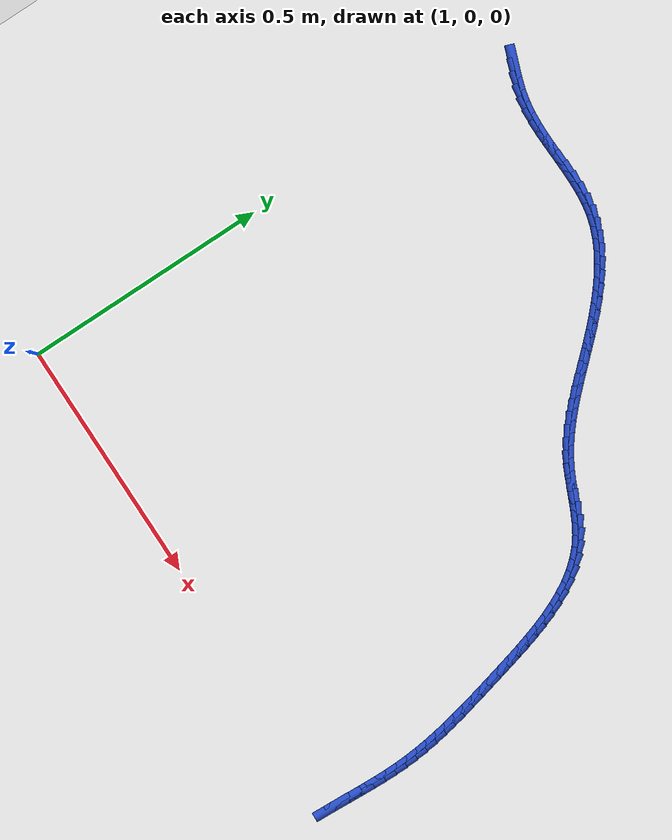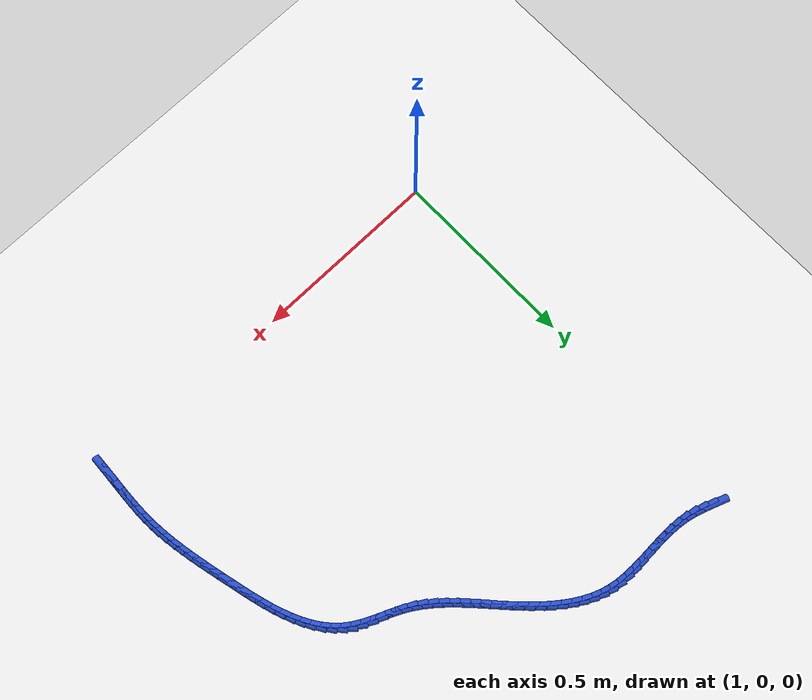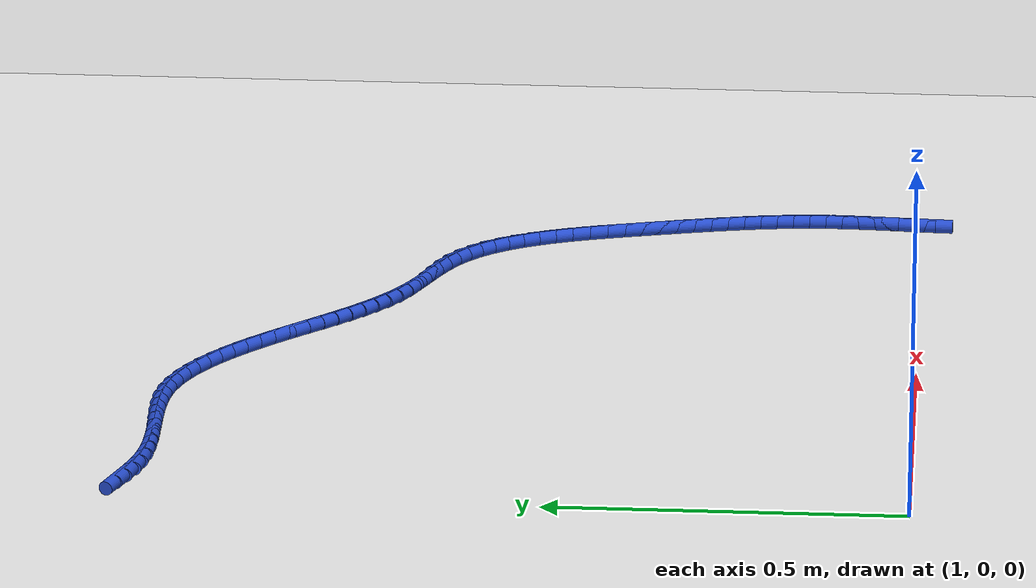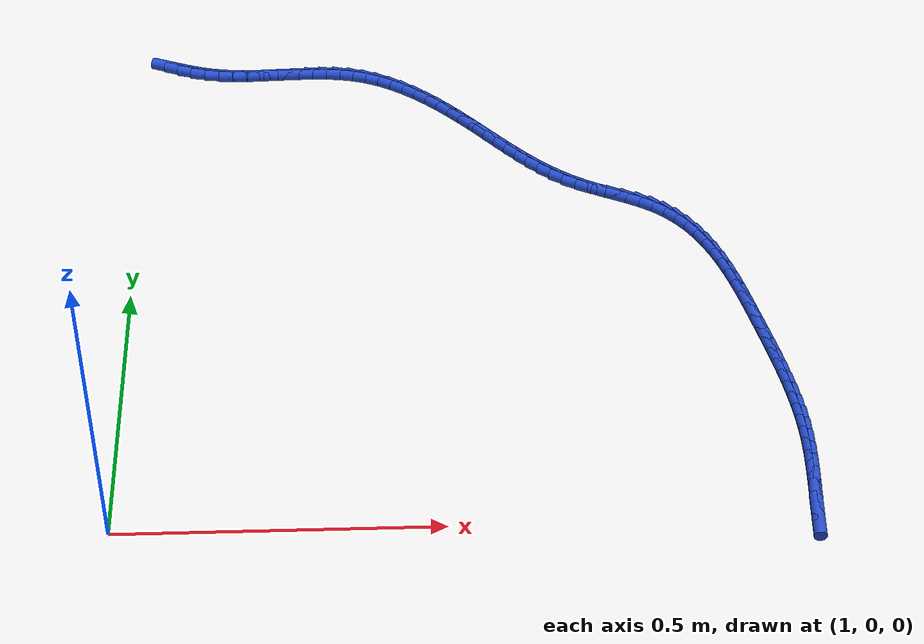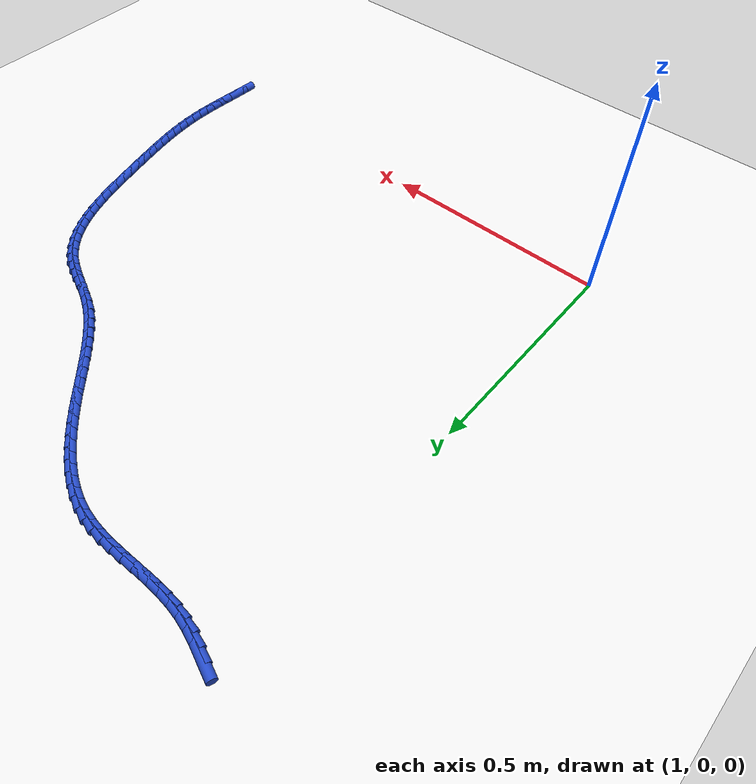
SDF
<sdf version="1.6">
 <world name="default">
  <model name="ground_plane">
   <static>1</static>
   <link name="link">
    <collision name="collision">
     <geometry><plane><normal>0 0 1</normal><size>100 100</size></plane></geometry>
     <surface><friction><ode><mu>100</mu><mu2>50</mu2></ode></friction></surface>
    </collision>
    <visual name="visual">
     <cast_shadows>0</cast_shadows>
     <geometry><plane><normal>0 0 1</normal><size>100 100</size></plane></geometry>
     <material>
      <script><uri>file://media/materials/scripts/gazebo.material</uri><name>Gazebo/WhiteGlow</name></script>
     </material>
    </visual>
   </link>
  </model>
  <model name="line">
   <link name="link_66">
    <pose>1.0381458278195175 1.0767680290504607 0.01 0 1.57 -0.35371978099237134</pose>
    <collision name="collision">
     <geometry><cylinder><radius>0.01</radius><length>0.08</length></cylinder></geometry>
    </collision>
    <visual name="visual">
     <material>
      <script><name>Gazebo/Blue</name><uri>file://media/materials/scripts/gazebo.material</uri></script>
     </material>
     <geometry><cylinder><radius>0.01</radius><length>0.08</length></cylinder></geometry>
    </visual>
   </link>
   <link name="link_67">
    <pose>1.061910256352784 1.0679930216064752 0.01 0 1.57 -0.30743141323960294</pose>
    <collision name="collision">
     <geometry><cylinder><radius>0.01</radius><length>0.08</length></cylinder></geometry>
    </collision>
    <visual name="visual">
     <material>
      <script><name>Gazebo/Blue</name><uri>file://media/materials/scripts/gazebo.material</uri></script>
     </material>
     <geometry><cylinder><radius>0.01</radius><length>0.08</length></cylinder></geometry>
    </visual>
   </link>
   <link name="link_68">
    <pose>1.0859365636925102 1.0603647248031756 0.01 0 1.57 -0.2305377430001714</pose>
    <collision name="collision">
     <geometry><cylinder><radius>0.01</radius><length>0.08</length></cylinder></geometry>
    </collision>
    <visual name="visual">
     <material>
      <script><name>Gazebo/Blue</name><uri>file://media/materials/scripts/gazebo.material</uri></script>
     </material>
     <geometry><cylinder><radius>0.01</radius><length>0.08</length></cylinder></geometry>
    </visual>
   </link>
   <link name="link_69">
    <pose>1.1103440872834063 1.0546360188912633 0.01 0 1.57 -0.14038997134857908</pose>
    <collision name="collision">
     <geometry><cylinder><radius>0.01</radius><length>0.08</length></cylinder></geometry>
    </collision>
    <visual name="visual">
     <material>
      <script><name>Gazebo/Blue</name><uri>file://media/materials/scripts/gazebo.material</uri></script>
     </material>
     <geometry><cylinder><radius>0.01</radius><length>0.08</length></cylinder></geometry>
    </visual>
   </link>
   <link name="link_70">
    <pose>1.1351726215416915 1.05112725955043 0.01 0 1.57 -0.06730607816485398</pose>
    <collision name="collision">
     <geometry><cylinder><radius>0.01</radius><length>0.08</length></cylinder></geometry>
    </collision>
    <visual name="visual">
     <material>
      <script><name>Gazebo/Blue</name><uri>file://media/materials/scripts/gazebo.material</uri></script>
     </material>
     <geometry><cylinder><radius>0.01</radius><length>0.08</length></cylinder></geometry>
    </visual>
   </link>
   <link name="link_71">
    <pose>1.1603282205221834 1.0494315735184856 0.01 0 1.57 -0.014153819753878225</pose>
    <collision name="collision">
     <geometry><cylinder><radius>0.01</radius><length>0.08</length></cylinder></geometry>
    </collision>
    <visual name="visual">
     <material>
      <script><name>Gazebo/Blue</name><uri>file://media/materials/scripts/gazebo.material</uri></script>
     </material>
     <geometry><cylinder><radius>0.01</radius><length>0.08</length></cylinder></geometry>
    </visual>
   </link>
   <link name="link_72">
    <pose>1.1857041194488427 1.049072383633088 0.01 0 1.57 0.01964204853696827</pose>
    <collision name="collision">
     <geometry><cylinder><radius>0.01</radius><length>0.08</length></cylinder></geometry>
    </collision>
    <visual name="visual">
     <material>
      <script><name>Gazebo/Blue</name><uri>file://media/materials/scripts/gazebo.material</uri></script>
     </material>
     <geometry><cylinder><radius>0.01</radius><length>0.08</length></cylinder></geometry>
    </visual>
   </link>
   <link name="link_73">
    <pose>1.2111935535456335 1.0495731127318964 0.01 0 1.57 0.03466072221899772</pose>
    <collision name="collision">
     <geometry><cylinder><radius>0.01</radius><length>0.08</length></cylinder></geometry>
    </collision>
    <visual name="visual">
     <material>
      <script><name>Gazebo/Blue</name><uri>file://media/materials/scripts/gazebo.material</uri></script>
     </material>
     <geometry><cylinder><radius>0.01</radius><length>0.08</length></cylinder></geometry>
    </visual>
   </link>
   <link name="link_74">
    <pose>1.2366897580365175 1.050457183652568 0.01 0 1.57 0.03112984585743997</pose>
    <collision name="collision">
     <geometry><cylinder><radius>0.01</radius><length>0.08</length></cylinder></geometry>
    </collision>
    <visual name="visual">
     <material>
      <script><name>Gazebo/Blue</name><uri>file://media/materials/scripts/gazebo.material</uri></script>
     </material>
     <geometry><cylinder><radius>0.01</radius><length>0.08</length></cylinder></geometry>
    </visual>
   </link>
   <link name="link_75">
    <pose>1.2620859681454575 1.051248019232762 0.01 0 1.57 0.008774204957133866</pose>
    <collision name="collision">
     <geometry><cylinder><radius>0.01</radius><length>0.08</length></cylinder></geometry>
    </collision>
    <visual name="visual">
     <material>
      <script><name>Gazebo/Blue</name><uri>file://media/materials/scripts/gazebo.material</uri></script>
     </material>
     <geometry><cylinder><radius>0.01</radius><length>0.08</length></cylinder></geometry>
    </visual>
   </link>
   <link name="link_76">
    <pose>1.2872754190964162 1.0514690423101363 0.01 0 1.57 -0.03316716253108689</pose>
    <collision name="collision">
     <geometry><cylinder><radius>0.01</radius><length>0.08</length></cylinder></geometry>
    </collision>
    <visual name="visual">
     <material>
      <script><name>Gazebo/Blue</name><uri>file://media/materials/scripts/gazebo.material</uri></script>
     </material>
     <geometry><cylinder><radius>0.01</radius><length>0.08</length></cylinder></geometry>
    </visual>
   </link>
   <link name="link_77">
    <pose>1.3121513461133556 1.0506436757223487 0.01 0 1.57 -0.0957306996572514</pose>
    <collision name="collision">
     <geometry><cylinder><radius>0.01</radius><length>0.08</length></cylinder></geometry>
    </collision>
    <visual name="visual">
     <material>
      <script><name>Gazebo/Blue</name><uri>file://media/materials/scripts/gazebo.material</uri></script>
     </material>
     <geometry><cylinder><radius>0.01</radius><length>0.08</length></cylinder></geometry>
    </visual>
   </link>
   <link name="link_78">
    <pose>1.3366069844202393 1.0482953423070587 0.01 0 1.57 -0.17974126352355807</pose>
    <collision name="collision">
     <geometry><cylinder><radius>0.01</radius><length>0.08</length></cylinder></geometry>
    </collision>
    <visual name="visual">
     <material>
      <script><name>Gazebo/Blue</name><uri>file://media/materials/scripts/gazebo.material</uri></script>
     </material>
     <geometry><cylinder><radius>0.01</radius><length>0.08</length></cylinder></geometry>
    </visual>
   </link>
   <link name="link_79">
    <pose>1.3605355692410286 1.0439474649019236 0.01 0 1.57 -0.28208507506470226</pose>
    <collision name="collision">
     <geometry><cylinder><radius>0.01</radius><length>0.08</length></cylinder></geometry>
    </collision>
    <visual name="visual">
     <material>
      <script><name>Gazebo/Blue</name><uri>file://media/materials/scripts/gazebo.material</uri></script>
     </material>
     <geometry><cylinder><radius>0.01</radius><length>0.08</length></cylinder></geometry>
    </visual>
   </link>
   <link name="link_80">
    <pose>1.3838416240269447 1.0371930633298188 0.01 0 1.57 -0.3817627258656698</pose>
    <collision name="collision">
     <geometry><cylinder><radius>0.01</radius><length>0.08</length></cylinder></geometry>
    </collision>
    <visual name="visual">
     <material>
      <script><name>Gazebo/Blue</name><uri>file://media/materials/scripts/gazebo.material</uri></script>
     </material>
     <geometry><cylinder><radius>0.01</radius><length>0.08</length></cylinder></geometry>
    </visual>
   </link>
   <link name="link_81">
    <pose>1.4065057736673519 1.028094356920742 0.01 0 1.57 -0.46979350355575417</pose>
    <collision name="collision">
     <geometry><cylinder><radius>0.01</radius><length>0.08</length></cylinder></geometry>
    </collision>
    <visual name="visual">
     <material>
      <script><name>Gazebo/Blue</name><uri>file://media/materials/scripts/gazebo.material</uri></script>
     </material>
     <geometry><cylinder><radius>0.01</radius><length>0.08</length></cylinder></geometry>
    </visual>
   </link>
   <link name="link_82">
    <pose>1.4285400824399808 1.01690740293844 0.01 0 1.57 -0.5461863242654821</pose>
    <collision name="collision">
     <geometry><cylinder><radius>0.01</radius><length>0.08</length></cylinder></geometry>
    </collision>
    <visual name="visual">
     <material>
      <script><name>Gazebo/Blue</name><uri>file://media/materials/scripts/gazebo.material</uri></script>
     </material>
     <geometry><cylinder><radius>0.01</radius><length>0.08</length></cylinder></geometry>
    </visual>
   </link>
   <link name="link_83">
    <pose>1.4499567139241207 1.0038888708853233 0.01 0 1.57 -0.6115529397663028</pose>
    <collision name="collision">
     <geometry><cylinder><radius>0.01</radius><length>0.08</length></cylinder></geometry>
    </collision>
    <visual name="visual">
     <material>
      <script><name>Gazebo/Blue</name><uri>file://media/materials/scripts/gazebo.material</uri></script>
     </material>
     <geometry><cylinder><radius>0.01</radius><length>0.08</length></cylinder></geometry>
    </visual>
   </link>
   <link name="link_84">
    <pose>1.4707678316990627 0.9892954302638024 0.01 0 1.57 -0.6667727513537921</pose>
    <collision name="collision">
     <geometry><cylinder><radius>0.01</radius><length>0.08</length></cylinder></geometry>
    </collision>
    <visual name="visual">
     <material>
      <script><name>Gazebo/Blue</name><uri>file://media/materials/scripts/gazebo.material</uri></script>
     </material>
     <geometry><cylinder><radius>0.01</radius><length>0.08</length></cylinder></geometry>
    </visual>
   </link>
   <link name="link_85">
    <pose>1.4909855993440952 0.9733837505762872 0.01 0 1.57 -0.7127770072014896</pose>
    <collision name="collision">
     <geometry><cylinder><radius>0.01</radius><length>0.08</length></cylinder></geometry>
    </collision>
    <visual name="visual">
     <material>
      <script><name>Gazebo/Blue</name><uri>file://media/materials/scripts/gazebo.material</uri></script>
     </material>
     <geometry><cylinder><radius>0.01</radius><length>0.08</length></cylinder></geometry>
    </visual>
   </link>
   <link name="link_86">
    <pose>1.5106221804385094 0.9564105013251887 0.01 0 1.57 -0.7504176206354635</pose>
    <collision name="collision">
     <geometry><cylinder><radius>0.01</radius><length>0.08</length></cylinder></geometry>
    </collision>
    <visual name="visual">
     <material>
      <script><name>Gazebo/Blue</name><uri>file://media/materials/scripts/gazebo.material</uri></script>
     </material>
     <geometry><cylinder><radius>0.01</radius><length>0.08</length></cylinder></geometry>
    </visual>
   </link>
   <link name="link_87">
    <pose>1.5296897385615935 0.9386323520129163 0.01 0 1.57 -0.7803945819840636</pose>
    <collision name="collision">
     <geometry><cylinder><radius>0.01</radius><length>0.08</length></cylinder></geometry>
    </collision>
    <visual name="visual">
     <material>
      <script><name>Gazebo/Blue</name><uri>file://media/materials/scripts/gazebo.material</uri></script>
     </material>
     <geometry><cylinder><radius>0.01</radius><length>0.08</length></cylinder></geometry>
    </visual>
   </link>
   <link name="link_88">
    <pose>1.5482004372926395 0.9203059721418814 0.01 0 1.57 -0.8029318330285284</pose>
    <collision name="collision">
     <geometry><cylinder><radius>0.01</radius><length>0.08</length></cylinder></geometry>
    </collision>
    <visual name="visual">
     <material>
      <script><name>Gazebo/Blue</name><uri>file://media/materials/scripts/gazebo.material</uri></script>
     </material>
     <geometry><cylinder><radius>0.01</radius><length>0.08</length></cylinder></geometry>
    </visual>
   </link>
   <link name="link_89">
    <pose>1.566189790311679 0.9016744550771016 0.01 0 1.57 -0.8169346020060594</pose>
    <collision name="collision">
     <geometry><cylinder><radius>0.01</radius><length>0.08</length></cylinder></geometry>
    </collision>
    <visual name="visual">
     <material>
      <script><name>Gazebo/Blue</name><uri>file://media/materials/scripts/gazebo.material</uri></script>
     </material>
     <geometry><cylinder><radius>0.01</radius><length>0.08</length></cylinder></geometry>
    </visual>
   </link>
   <link name="link_90">
    <pose>1.583796058649894 0.8829211551627157 0.01 0 1.57 -0.8219064782068806</pose>
    <collision name="collision">
     <geometry><cylinder><radius>0.01</radius><length>0.08</length></cylinder></geometry>
    </collision>
    <visual name="visual">
     <material>
      <script><name>Gazebo/Blue</name><uri>file://media/materials/scripts/gazebo.material</uri></script>
     </material>
     <geometry><cylinder><radius>0.01</radius><length>0.08</length></cylinder></geometry>
    </visual>
   </link>
   <link name="link_91">
    <pose>1.6011857561189073 0.8642130001058563 0.01 0 1.57 -0.8176576076891716</pose>
    <collision name="collision">
     <geometry><cylinder><radius>0.01</radius><length>0.08</length></cylinder></geometry>
    </collision>
    <visual name="visual">
     <material>
      <script><name>Gazebo/Blue</name><uri>file://media/materials/scripts/gazebo.material</uri></script>
     </material>
     <geometry><cylinder><radius>0.01</radius><length>0.08</length></cylinder></geometry>
    </visual>
   </link>
   <link name="link_92">
    <pose>1.6185253973555596 0.8457169171338607 0.01 0 1.57 -0.8039769889160758</pose>
    <collision name="collision">
     <geometry><cylinder><radius>0.01</radius><length>0.08</length></cylinder></geometry>
    </collision>
    <visual name="visual">
     <material>
      <script><name>Gazebo/Blue</name><uri>file://media/materials/scripts/gazebo.material</uri></script>
     </material>
     <geometry><cylinder><radius>0.01</radius><length>0.08</length></cylinder></geometry>
    </visual>
   </link>
   <link name="link_93">
    <pose>1.6359814969966895 0.8275998334740651 0.01 0 1.57 -0.7806427625578175</pose>
    <collision name="collision">
     <geometry><cylinder><radius>0.01</radius><length>0.08</length></cylinder></geometry>
    </collision>
    <visual name="visual">
     <material>
      <script><name>Gazebo/Blue</name><uri>file://media/materials/scripts/gazebo.material</uri></script>
     </material>
     <geometry><cylinder><radius>0.01</radius><length>0.08</length></cylinder></geometry>
    </visual>
   </link>
   <link name="link_94">
    <pose>1.6537205696791384 0.8100286763538078 0.01 0 1.57 -0.7474598549343492</pose>
    <collision name="collision">
     <geometry><cylinder><radius>0.01</radius><length>0.08</length></cylinder></geometry>
    </collision>
    <visual name="visual">
     <material>
      <script><name>Gazebo/Blue</name><uri>file://media/materials/scripts/gazebo.material</uri></script>
     </material>
     <geometry><cylinder><radius>0.01</radius><length>0.08</length></cylinder></geometry>
    </visual>
   </link>
   <link name="link_95">
    <pose>1.6719091300397462 0.7931703730004258 0.01 0 1.57 -0.7043286883288693</pose>
    <collision name="collision">
     <geometry><cylinder><radius>0.01</radius><length>0.08</length></cylinder></geometry>
    </collision>
    <visual name="visual">
     <material>
      <script><name>Gazebo/Blue</name><uri>file://media/materials/scripts/gazebo.material</uri></script>
     </material>
     <geometry><cylinder><radius>0.01</radius><length>0.08</length></cylinder></geometry>
    </visual>
   </link>
   <link name="link_96">
    <pose>1.690713692715353 0.7771918506412562 0.01 0 1.57 -0.6513455813508202</pose>
    <collision name="collision">
     <geometry><cylinder><radius>0.01</radius><length>0.08</length></cylinder></geometry>
    </collision>
    <visual name="visual">
     <material>
      <script><name>Gazebo/Blue</name><uri>file://media/materials/scripts/gazebo.material</uri></script>
     </material>
     <geometry><cylinder><radius>0.01</radius><length>0.08</length></cylinder></geometry>
    </visual>
   </link>
   <link name="link_97">
    <pose>1.7103007723427983 0.762260036503636 0.01 0 1.57 -0.5889270113876676</pose>
    <collision name="collision">
     <geometry><cylinder><radius>0.01</radius><length>0.08</length></cylinder></geometry>
    </collision>
    <visual name="visual">
     <material>
      <script><name>Gazebo/Blue</name><uri>file://media/materials/scripts/gazebo.material</uri></script>
     </material>
     <geometry><cylinder><radius>0.01</radius><length>0.08</length></cylinder></geometry>
    </visual>
   </link>
   <link name="link_98">
    <pose>1.7308368835589232 0.7485418578149028 0.01 0 1.57 -0.5180484513194363</pose>
    <collision name="collision">
     <geometry><cylinder><radius>0.01</radius><length>0.08</length></cylinder></geometry>
    </collision>
    <visual name="visual">
     <material>
      <script><name>Gazebo/Blue</name><uri>file://media/materials/scripts/gazebo.material</uri></script>
     </material>
     <geometry><cylinder><radius>0.01</radius><length>0.08</length></cylinder></geometry>
    </visual>
   </link>
   <link name="link_99">
    <pose>1.7524865991705647 0.7362020957964245 0.01 0 1.57 -0.45360791362111375</pose>
    <collision name="collision">
     <geometry><cylinder><radius>0.01</radius><length>0.08</length></cylinder></geometry>
    </collision>
    <visual name="visual">
     <material>
      <script><name>Gazebo/Blue</name><uri>file://media/materials/scripts/gazebo.material</uri></script>
     </material>
     <geometry><cylinder><radius>0.01</radius><length>0.08</length></cylinder></geometry>
    </visual>
   </link>
   <link name="link_100">
    <pose>1.7751752231838085 0.7251411046734352 0.01 0 1.57 -0.421575988081879</pose>
    <collision name="collision">
     <geometry><cylinder><radius>0.01</radius><length>0.08</length></cylinder></geometry>
    </collision>
    <visual name="visual">
     <material>
      <script><name>Gazebo/Blue</name><uri>file://media/materials/scripts/gazebo.material</uri></script>
     </material>
     <geometry><cylinder><radius>0.01</radius><length>0.08</length></cylinder></geometry>
    </visual>
   </link>
   <link name="link_101">
    <pose>1.7983610290698382 0.7147431016693554 0.01 0 1.57 -0.42361679714418626</pose>
    <collision name="collision">
     <geometry><cylinder><radius>0.01</radius><length>0.08</length></cylinder></geometry>
    </collision>
    <visual name="visual">
     <material>
      <script><name>Gazebo/Blue</name><uri>file://media/materials/scripts/gazebo.material</uri></script>
     </material>
     <geometry><cylinder><radius>0.01</radius><length>0.08</length></cylinder></geometry>
    </visual>
   </link>
   <link name="link_102">
    <pose>1.8214483041612892 0.7043326414339492 0.01 0 1.57 -0.4601349096327095</pose>
    <collision name="collision">
     <geometry><cylinder><radius>0.01</radius><length>0.08</length></cylinder></geometry>
    </collision>
    <visual name="visual">
     <material>
      <script><name>Gazebo/Blue</name><uri>file://media/materials/scripts/gazebo.material</uri></script>
     </material>
     <geometry><cylinder><radius>0.01</radius><length>0.08</length></cylinder></geometry>
    </visual>
   </link>
   <link name="link_103">
    <pose>1.8438413357908003 0.693234278616981 0.01 0 1.57 -0.5334170311915204</pose>
    <collision name="collision">
     <geometry><cylinder><radius>0.01</radius><length>0.08</length></cylinder></geometry>
    </collision>
    <visual name="visual">
     <material>
      <script><name>Gazebo/Blue</name><uri>file://media/materials/scripts/gazebo.material</uri></script>
     </material>
     <geometry><cylinder><radius>0.01</radius><length>0.08</length></cylinder></geometry>
    </visual>
   </link>
   <link name="link_104">
    <pose>1.8649444112910083 0.6807725678682153 0.01 0 1.57 -0.6436604302014025</pose>
    <collision name="collision">
     <geometry><cylinder><radius>0.01</radius><length>0.08</length></cylinder></geometry>
    </collision>
    <visual name="visual">
     <material>
      <script><name>Gazebo/Blue</name><uri>file://media/materials/scripts/gazebo.material</uri></script>
     </material>
     <geometry><cylinder><radius>0.01</radius><length>0.08</length></cylinder></geometry>
    </visual>
   </link>
   <link name="link_105">
    <pose>1.8842047774997706 0.6663224979688249 0.01 0 1.57 -0.7626624458103762</pose>
    <collision name="collision">
     <geometry><cylinder><radius>0.01</radius><length>0.08</length></cylinder></geometry>
    </collision>
    <visual name="visual">
     <material>
      <script><name>Gazebo/Blue</name><uri>file://media/materials/scripts/gazebo.material</uri></script>
     </material>
     <geometry><cylinder><radius>0.01</radius><length>0.08</length></cylinder></geometry>
    </visual>
   </link>
   <link name="link_106">
    <pose>1.9015150795397564 0.6497819518886039 0.01 0 1.57 -0.8708441908864054</pose>
    <collision name="collision">
     <geometry><cylinder><radius>0.01</radius><length>0.08</length></cylinder></geometry>
    </collision>
    <visual name="visual">
     <material>
      <script><name>Gazebo/Blue</name><uri>file://media/materials/scripts/gazebo.material</uri></script>
     </material>
     <geometry><cylinder><radius>0.01</radius><length>0.08</length></cylinder></geometry>
    </visual>
   </link>
   <link name="link_107">
    <pose>1.9170315911517721 0.6313583105839284 0.01 0 1.57 -0.9662516410617674</pose>
    <collision name="collision">
     <geometry><cylinder><radius>0.01</radius><length>0.08</length></cylinder></geometry>
    </collision>
    <visual name="visual">
     <material>
      <script><name>Gazebo/Blue</name><uri>file://media/materials/scripts/gazebo.material</uri></script>
     </material>
     <geometry><cylinder><radius>0.01</radius><length>0.08</length></cylinder></geometry>
    </visual>
   </link>
   <link name="link_108">
    <pose>1.9309140272102898 0.6112629948758501 0.01 0 1.57 -1.0484872147912623</pose>
    <collision name="collision">
     <geometry><cylinder><radius>0.01</radius><length>0.08</length></cylinder></geometry>
    </collision>
    <visual name="visual">
     <material>
      <script><name>Gazebo/Blue</name><uri>file://media/materials/scripts/gazebo.material</uri></script>
     </material>
     <geometry><cylinder><radius>0.01</radius><length>0.08</length></cylinder></geometry>
    </visual>
   </link>
   <link name="link_109">
    <pose>1.9433221025897842 0.5897074255854216 0.01 0 1.57 -1.1180392673759436</pose>
    <collision name="collision">
     <geometry><cylinder><radius>0.01</radius><length>0.08</length></cylinder></geometry>
    </collision>
    <visual name="visual">
     <material>
      <script><name>Gazebo/Blue</name><uri>file://media/materials/scripts/gazebo.material</uri></script>
     </material>
     <geometry><cylinder><radius>0.01</radius><length>0.08</length></cylinder></geometry>
    </visual>
   </link>
   <link name="link_110">
    <pose>1.9544155321647292 0.5669030235336949 0.01 0 1.57 -1.175847629124807</pose>
    <collision name="collision">
     <geometry><cylinder><radius>0.01</radius><length>0.08</length></cylinder></geometry>
    </collision>
    <visual name="visual">
     <material>
      <script><name>Gazebo/Blue</name><uri>file://media/materials/scripts/gazebo.material</uri></script>
     </material>
     <geometry><cylinder><radius>0.01</radius><length>0.08</length></cylinder></geometry>
    </visual>
   </link>
   <link name="link_111">
    <pose>1.9643540308095973 0.5430612095417224 0.01 0 1.57 -1.222986227241024</pose>
    <collision name="collision">
     <geometry><cylinder><radius>0.01</radius><length>0.08</length></cylinder></geometry>
    </collision>
    <visual name="visual">
     <material>
      <script><name>Gazebo/Blue</name><uri>file://media/materials/scripts/gazebo.material</uri></script>
     </material>
     <geometry><cylinder><radius>0.01</radius><length>0.08</length></cylinder></geometry>
    </visual>
   </link>
   <link name="link_112">
    <pose>1.9732973133988636 0.5183934044305565 0.01 0 1.57 -1.2604684456032351</pose>
    <collision name="collision">
     <geometry><cylinder><radius>0.01</radius><length>0.08</length></cylinder></geometry>
    </collision>
    <visual name="visual">
     <material>
      <script><name>Gazebo/Blue</name><uri>file://media/materials/scripts/gazebo.material</uri></script>
     </material>
     <geometry><cylinder><radius>0.01</radius><length>0.08</length></cylinder></geometry>
    </visual>
   </link>
   <link name="link_113">
    <pose>1.9814050948070006 0.49311102902124976 0.01 0 1.57 -1.289142591181521</pose>
    <collision name="collision">
     <geometry><cylinder><radius>0.01</radius><length>0.08</length></cylinder></geometry>
    </collision>
    <visual name="visual">
     <material>
      <script><name>Gazebo/Blue</name><uri>file://media/materials/scripts/gazebo.material</uri></script>
     </material>
     <geometry><cylinder><radius>0.01</radius><length>0.08</length></cylinder></geometry>
    </visual>
   </link>
   <link name="link_114">
    <pose>1.988837089908484 0.46742550413485384 0.01 0 1.57 -1.3096411971664015</pose>
    <collision name="collision">
     <geometry><cylinder><radius>0.01</radius><length>0.08</length></cylinder></geometry>
    </collision>
    <visual name="visual">
     <material>
      <script><name>Gazebo/Blue</name><uri>file://media/materials/scripts/gazebo.material</uri></script>
     </material>
     <geometry><cylinder><radius>0.01</radius><length>0.08</length></cylinder></geometry>
    </visual>
   </link>
   <link name="link_115">
    <pose>1.995753013577785 0.4415482505924211 0.01 0 1.57 -1.3223563835772991</pose>
    <collision name="collision">
     <geometry><cylinder><radius>0.01</radius><length>0.08</length></cylinder></geometry>
    </collision>
    <visual name="visual">
     <material>
      <script><name>Gazebo/Blue</name><uri>file://media/materials/scripts/gazebo.material</uri></script>
     </material>
     <geometry><cylinder><radius>0.01</radius><length>0.08</length></cylinder></geometry>
    </visual>
   </link>
   <link name="link_116">
    <pose>2.002312580689379 0.4156906892150039 0.01 0 1.57 -1.3275776542486406</pose>
    <collision name="collision">
     <geometry><cylinder><radius>0.01</radius><length>0.08</length></cylinder></geometry>
    </collision>
    <visual name="visual">
     <material>
      <script><name>Gazebo/Blue</name><uri>file://media/materials/scripts/gazebo.material</uri></script>
     </material>
     <geometry><cylinder><radius>0.01</radius><length>0.08</length></cylinder></geometry>
    </visual>
   </link>
   <link name="link_117">
    <pose>2.008672161888649 0.39006073752281945 0.01 0 1.57 -1.3302063269746063</pose>
    <collision name="collision">
     <geometry><cylinder><radius>0.01</radius><length>0.08</length></cylinder></geometry>
    </collision>
    <visual name="visual">
     <material>
      <script><name>Gazebo/Blue</name><uri>file://media/materials/scripts/gazebo.material</uri></script>
     </material>
     <geometry><cylinder><radius>0.01</radius><length>0.08</length></cylinder></geometry>
    </visual>
   </link>
   <link name="link_118">
    <pose>2.0148809591845103 0.36475404681166324 0.01 0 1.57 -1.3362012785397344</pose>
    <collision name="collision">
     <geometry><cylinder><radius>0.01</radius><length>0.08</length></cylinder></geometry>
    </collision>
    <visual name="visual">
     <material>
      <script><name>Gazebo/Blue</name><uri>file://media/materials/scripts/gazebo.material</uri></script>
     </material>
     <geometry><cylinder><radius>0.01</radius><length>0.08</length></cylinder></geometry>
    </visual>
   </link>
   <link name="link_119">
    <pose>2.02086089452924 0.3397329341120601 0.01 0 1.57 -1.3460326600287378</pose>
    <collision name="collision">
     <geometry><cylinder><radius>0.01</radius><length>0.08</length></cylinder></geometry>
    </collision>
    <visual name="visual">
     <material>
      <script><name>Gazebo/Blue</name><uri>file://media/materials/scripts/gazebo.material</uri></script>
     </material>
     <geometry><cylinder><radius>0.01</radius><length>0.08</length></cylinder></geometry>
    </visual>
   </link>
   <link name="link_120">
    <pose>2.026526486028859 0.314951960436614 0.01 0 1.57 -1.3598088261435934</pose>
    <collision name="collision">
     <geometry><cylinder><radius>0.01</radius><length>0.08</length></cylinder></geometry>
    </collision>
    <visual name="visual">
     <material>
      <script><name>Gazebo/Blue</name><uri>file://media/materials/scripts/gazebo.material</uri></script>
     </material>
     <geometry><cylinder><radius>0.01</radius><length>0.08</length></cylinder></geometry>
    </visual>
   </link>
   <link name="link_121">
    <pose>2.031792251789392 0.2903656867979291 0.01 0 1.57 -1.3776122944999087</pose>
    <collision name="collision">
     <geometry><cylinder><radius>0.01</radius><length>0.08</length></cylinder></geometry>
    </collision>
    <visual name="visual">
     <material>
      <script><name>Gazebo/Blue</name><uri>file://media/materials/scripts/gazebo.material</uri></script>
     </material>
     <geometry><cylinder><radius>0.01</radius><length>0.08</length></cylinder></geometry>
    </visual>
   </link>
   <link name="link_122">
    <pose>2.0365727099168605 0.2659286742086094 0.01 0 1.57 -1.3994908242330633</pose>
    <collision name="collision">
     <geometry><cylinder><radius>0.01</radius><length>0.08</length></cylinder></geometry>
    </collision>
    <visual name="visual">
     <material>
      <script><name>Gazebo/Blue</name><uri>file://media/materials/scripts/gazebo.material</uri></script>
     </material>
     <geometry><cylinder><radius>0.01</radius><length>0.08</length></cylinder></geometry>
    </visual>
   </link>
   <link name="link_123">
    <pose>2.040782378517287 0.24159548368125927 0.01 0 1.57 -1.425446536366976</pose>
    <collision name="collision">
     <geometry><cylinder><radius>0.01</radius><length>0.08</length></cylinder></geometry>
    </collision>
    <visual name="visual">
     <material>
      <script><name>Gazebo/Blue</name><uri>file://media/materials/scripts/gazebo.material</uri></script>
     </material>
     <geometry><cylinder><radius>0.01</radius><length>0.08</length></cylinder></geometry>
    </visual>
   </link>
   <link name="link_124">
    <pose>2.0443357756966956 0.21732067622848233 0.01 0 1.57 -1.455423587413561</pose>
    <collision name="collision">
     <geometry><cylinder><radius>0.01</radius><length>0.08</length></cylinder></geometry>
    </collision>
    <visual name="visual">
     <material>
      <script><name>Gazebo/Blue</name><uri>file://media/materials/scripts/gazebo.material</uri></script>
     </material>
     <geometry><cylinder><radius>0.01</radius><length>0.08</length></cylinder></geometry>
    </visual>
   </link>
   <link name="link_125">
    <pose>2.0471474195611084 0.19305881286288282 0.01 0 1.57 -1.4892953898398444</pose>
    <collision name="collision">
     <geometry><cylinder><radius>0.01</radius><length>0.08</length></cylinder></geometry>
    </collision>
    <visual name="visual">
     <material>
      <script><name>Gazebo/Blue</name><uri>file://media/materials/scripts/gazebo.material</uri></script>
     </material>
     <geometry><cylinder><radius>0.01</radius><length>0.08</length></cylinder></geometry>
    </visual>
   </link>
   <link name="link_126">
    <pose>2.0491318282165483 0.16876445459706493 0.01 0 1.57 -1.5265698694122738</pose>
    <collision name="collision">
     <geometry><cylinder><radius>0.01</radius><length>0.08</length></cylinder></geometry>
    </collision>
    <visual name="visual">
     <material>
      <script><name>Gazebo/Blue</name><uri>file://media/materials/scripts/gazebo.material</uri></script>
     </material>
     <geometry><cylinder><radius>0.01</radius><length>0.08</length></cylinder></geometry>
    </visual>
   </link>
   <link name="link_127">
    <pose>2.0502103837607764 0.14439324547371482 0.01 0 1.57 -1.5615512723182225</pose>
    <collision name="collision">
     <geometry><cylinder><radius>0.01</radius><length>0.08</length></cylinder></geometry>
    </collision>
    <visual name="visual">
     <material>
      <script><name>Gazebo/Blue</name><uri>file://media/materials/scripts/gazebo.material</uri></script>
     </material>
     <geometry><cylinder><radius>0.01</radius><length>0.08</length></cylinder></geometry>
    </visual>
   </link>
   <link name="link_128">
    <pose>2.0504366311371274 0.11992168275664185 0.01 0 1.57 1.552356853543469</pose>
    <collision name="collision">
     <geometry><cylinder><radius>0.01</radius><length>0.08</length></cylinder></geometry>
    </collision>
    <visual name="visual">
     <material>
      <script><name>Gazebo/Blue</name><uri>file://media/materials/scripts/gazebo.material</uri></script>
     </material>
     <geometry><cylinder><radius>0.01</radius><length>0.08</length></cylinder></geometry>
    </visual>
   </link>
   <link name="link_129">
    <pose>2.049983400250765 0.0953450850029985 0.01 0 1.57 1.532104907032788</pose>
    <collision name="collision">
     <geometry><cylinder><radius>0.01</radius><length>0.08</length></cylinder></geometry>
    </collision>
    <visual name="visual">
     <material>
      <script><name>Gazebo/Blue</name><uri>file://media/materials/scripts/gazebo.material</uri></script>
     </material>
     <geometry><cylinder><radius>0.01</radius><length>0.08</length></cylinder></geometry>
    </visual>
   </link>
   <link name="link_130">
    <pose>2.049027800932981 0.0706594460750549 0.01 0 1.57 1.519191950507641</pose>
    <collision name="collision">
     <geometry><cylinder><radius>0.01</radius><length>0.08</length></cylinder></geometry>
    </collision>
    <visual name="visual">
     <material>
      <script><name>Gazebo/Blue</name><uri>file://media/materials/scripts/gazebo.material</uri></script>
     </material>
     <geometry><cylinder><radius>0.01</radius><length>0.08</length></cylinder></geometry>
    </visual>
   </link>
   <link name="link_131">
    <pose>2.0477469430150665 0.04586075983508099 0.01 0 1.57 1.5135055172033967</pose>
    <collision name="collision">
     <geometry><cylinder><radius>0.01</radius><length>0.08</length></cylinder></geometry>
    </collision>
    <visual name="visual">
     <material>
      <script><name>Gazebo/Blue</name><uri>file://media/materials/scripts/gazebo.material</uri></script>
     </material>
     <geometry><cylinder><radius>0.01</radius><length>0.08</length></cylinder></geometry>
    </visual>
   </link>
   <link name="link_132">
    <pose>2.046317936328315 0.020945020145346868 0.01 0 1.57 1.514934991238329</pose>
    <collision name="collision">
     <geometry><cylinder><radius>0.01</radius><length>0.08</length></cylinder></geometry>
    </collision>
    <visual name="visual">
     <material>
      <script><name>Gazebo/Blue</name><uri>file://media/materials/scripts/gazebo.material</uri></script>
     </material>
     <geometry><cylinder><radius>0.01</radius><length>0.08</length></cylinder></geometry>
    </visual>
   </link>
   <link name="link_133">
    <pose>2.0449178907040166 -0.004091779131877469 0.01 0 1.57 1.5233801359141876</pose>
    <collision name="collision">
     <geometry><cylinder><radius>0.01</radius><length>0.08</length></cylinder></geometry>
    </collision>
    <visual name="visual">
     <material>
      <script><name>Gazebo/Blue</name><uri>file://media/materials/scripts/gazebo.material</uri></script>
     </material>
     <geometry><cylinder><radius>0.01</radius><length>0.08</length></cylinder></geometry>
    </visual>
   </link>
  </model>
 </world>
</sdf>
